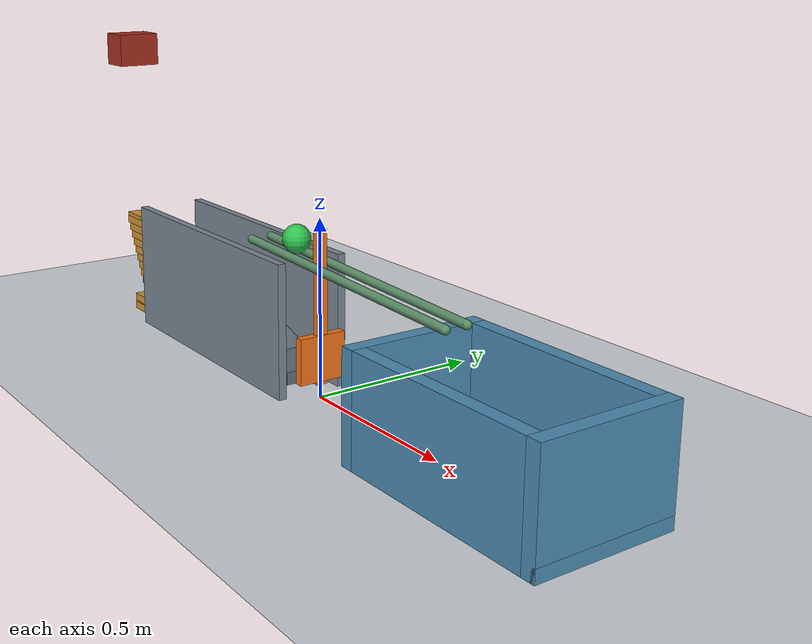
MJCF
<mujoco model="falling_block_wedge_ball_release">
  <compiler angle="radian"/>
  <option timestep="0.002" gravity="0 0 -9.81" integrator="implicitfast" solver="Newton" iterations="80" cone="elliptic"/>
  <size njmax="300" nconmax="150"/>

  <visual>
    <headlight ambient="0.4 0.4 0.4" diffuse="0.7 0.7 0.7" specular="0.2 0.2 0.2"/>
  </visual>

  <worldbody>
    <light name="main_light" pos="-0.5 -2 3" dir="0.2 0.5 -1"/>
    <camera name="overview" pos="0.4 -3 1.8" xyaxes="1 0 0 0 0.45 0.893"/>
    <geom name="floor" type="plane" pos="0 0 0" size="3 2 0.1" friction="1 0.01 0.001" condim="6" rgba="0.82 0.84 0.86 1"/>

    <!-- The block's bottom starts exactly 0.5 m above the wedge's top. -->
    <body name="block" pos="-1.105 0 0.85">
      <freejoint name="block_free"/>
      <geom name="block_weight" type="box" size="0.05 0.065 0.05" mass="0.30" friction="0.7 0.003 0.0001" solref="0.008 1" rgba="0.65 0.18 0.12 1"/>
    </body>

    <!-- A stepped triangular prism, balanced on a narrow, wider-in-y heel. -->
    <body name="wedge" pos="-0.98 0 0">
      <freejoint name="wedge_free"/>
      <inertial pos="0 0 0.17" mass="0.45" diaginertia="0.005 0.008 0.005"/>
      <geom name="wedge_heel" type="box" pos="0 0 0.012" size="0.035 0.065 0.012" friction="0.8 0.003 0.0001" rgba="0.82 0.58 0.20 1"/>
      <geom name="wedge_tier01" type="box" pos="0 0 0.036" size="0.045 0.060 0.012" friction="0.7 0.003 0.0001" rgba="0.82 0.58 0.20 1"/>
      <geom name="wedge_tier02" type="box" pos="0 0 0.060" size="0.055 0.022 0.012" friction="0.7 0.003 0.0001" rgba="0.82 0.58 0.20 1"/>
      <geom name="wedge_tier03" type="box" pos="0 0 0.084" size="0.067 0.022 0.012" friction="0.7 0.003 0.0001" rgba="0.82 0.58 0.20 1"/>
      <geom name="wedge_tier04" type="box" pos="0 0 0.108" size="0.079 0.022 0.012" friction="0.7 0.003 0.0001" rgba="0.82 0.58 0.20 1"/>
      <geom name="wedge_tier05" type="box" pos="0 0 0.132" size="0.091 0.022 0.012" friction="0.7 0.003 0.0001" rgba="0.82 0.58 0.20 1"/>
      <geom name="wedge_tier06" type="box" pos="0 0 0.156" size="0.103 0.022 0.012" friction="0.7 0.003 0.0001" rgba="0.82 0.58 0.20 1"/>
      <geom name="wedge_tier07" type="box" pos="0 0 0.180" size="0.115 0.022 0.012" friction="0.7 0.003 0.0001" rgba="0.82 0.58 0.20 1"/>
      <geom name="wedge_tier08" type="box" pos="0 0 0.204" size="0.127 0.022 0.012" friction="0.7 0.003 0.0001" rgba="0.82 0.58 0.20 1"/>
      <geom name="wedge_tier09" type="box" pos="0 0 0.228" size="0.139 0.022 0.012" friction="0.7 0.003 0.0001" rgba="0.82 0.58 0.20 1"/>
      <geom name="wedge_tier10" type="box" pos="0 0 0.252" size="0.151 0.022 0.012" friction="0.7 0.003 0.0001" rgba="0.82 0.58 0.20 1"/>
      <geom name="wedge_tier11" type="box" pos="0 0 0.276" size="0.163 0.022 0.012" friction="0.7 0.003 0.0001" rgba="0.82 0.58 0.20 1"/>
      <geom name="wedge_top" type="box" pos="0 0 0.294" size="0.163 0.022 0.006" friction="0.7 0.003 0.0001" rgba="0.82 0.58 0.20 1"/>
    </body>

    <body name="ball1" pos="-0.75 0 0.27">
      <freejoint name="ball1_free"/>
      <geom name="ball1_sphere" type="sphere" size="0.045" mass="0.12" condim="6" friction="0.55 0.002 0.00005" solref="0.008 1" rgba="0.12 0.35 0.85 1"/>
    </body>

    <body name="ramp" pos="0 0 0">
      <!-- The initial level rails hold ball1 still and leave room for the wedge. -->
      <geom name="ramp_start_left" type="box" pos="-0.7675 -0.036 0.21527" size="0.0925 0.010 0.018" friction="0.5 0.002 0.00005" rgba="0.38 0.43 0.48 1"/>
      <geom name="ramp_start_right" type="box" pos="-0.7675 0.036 0.21527" size="0.0925 0.010 0.018" friction="0.5 0.002 0.00005" rgba="0.38 0.43 0.48 1"/>
      <geom name="ramp_descent" type="box" pos="-0.441114 0 0.138557" euler="0 0.305879 0" size="0.249061 0.082 0.012" friction="0.5 0.002 0.00005" rgba="0.38 0.43 0.48 1"/>
      <geom name="ramp_runout" type="box" pos="-0.12 0 0.057" size="0.08 0.082 0.018" friction="0.5 0.002 0.00005" rgba="0.38 0.43 0.48 1"/>
      <geom name="ramp_lower_wall_left" type="box" pos="-0.45 -0.095 0.19" size="0.41 0.012 0.19" friction="0.4 0.002 0.00005" rgba="0.48 0.53 0.58 1"/>
      <geom name="ramp_lower_wall_right" type="box" pos="-0.45 0.095 0.19" size="0.41 0.012 0.19" friction="0.4 0.002 0.00005" rgba="0.48 0.53 0.58 1"/>

      <!-- Ball2 straddles these downhill rails; the narrow flap swings between them. -->
      <geom name="ramp_upper_left" type="capsule" fromto="-0.30 -0.032 0.3845 0.56 -0.032 0.3544" size="0.012" friction="0.3 0.001 0.00002" rgba="0.35 0.55 0.40 1"/>
      <geom name="ramp_upper_right" type="capsule" fromto="-0.30 0.032 0.3845 0.56 0.032 0.3544" size="0.012" friction="0.3 0.001 0.00002" rgba="0.35 0.55 0.40 1"/>
    </body>

    <body name="flap" pos="0 0 0.04">
      <inertial pos="0 0 0.20" mass="0.10" diaginertia="0.0017 0.0017 0.0001"/>
      <joint name="flap_hinge" type="hinge" axis="0 -1 0" limited="true" range="-0.80 0.15" damping="0.004" frictionloss="0.0003" armature="0.0002" solreflimit="0.004 1"/>
      <geom name="flap_gate" type="box" pos="0 0 0.215" size="0.009 0.016 0.215" friction="0.4 0.002 0.00002" solref="0.006 1" rgba="0.95 0.45 0.10 1"/>
      <geom name="flap_striker" type="box" pos="0 0 0.075" size="0.012 0.070 0.065" friction="0.4 0.002 0.00005" solref="0.006 1" rgba="0.95 0.45 0.10 1"/>
    </body>

    <body name="ball2" pos="-0.115 0 0.420">
      <freejoint name="ball2_free"/>
      <geom name="ball2_sphere" type="sphere" size="0.040" mass="0.035" condim="6" friction="0.45 0.001 0.00002" solref="0.010 1" rgba="0.18 0.75 0.30 1"/>
    </body>

    <body name="cup" pos="0.72 0 0">
      <geom name="cup_bottom" type="box" pos="0 0 0.018" size="0.33 0.20 0.018" condim="6" friction="0.9 0.02 0.003" solref="0.015 1" rgba="0.30 0.55 0.70 1"/>
      <geom name="cup_left_wall" type="box" pos="-0.31 0 0.15" size="0.02 0.20 0.15" condim="6" friction="0.9 0.02 0.003" solref="0.015 1" rgba="0.30 0.55 0.70 1"/>
      <geom name="cup_right_wall" type="box" pos="0.31 0 0.15" size="0.02 0.20 0.15" condim="6" friction="0.9 0.02 0.003" solref="0.015 1" rgba="0.30 0.55 0.70 1"/>
      <geom name="cup_front_wall" type="box" pos="0 -0.18 0.15" size="0.29 0.02 0.15" condim="6" friction="0.9 0.02 0.003" solref="0.015 1" rgba="0.30 0.55 0.70 1"/>
      <geom name="cup_back_wall" type="box" pos="0 0.18 0.15" size="0.29 0.02 0.15" condim="6" friction="0.9 0.02 0.003" solref="0.015 1" rgba="0.30 0.55 0.70 1"/>
    </body>
  </worldbody>

  <keyframe>
    <key name="start" qpos="-1.105 0 0.85 1 0 0 0  -0.98 0 0 1 0 0 0  -0.75 0 0.27 1 0 0 0  0.15  -0.115 0 0.420 1 0 0 0"/>
  </keyframe>
</mujoco>
